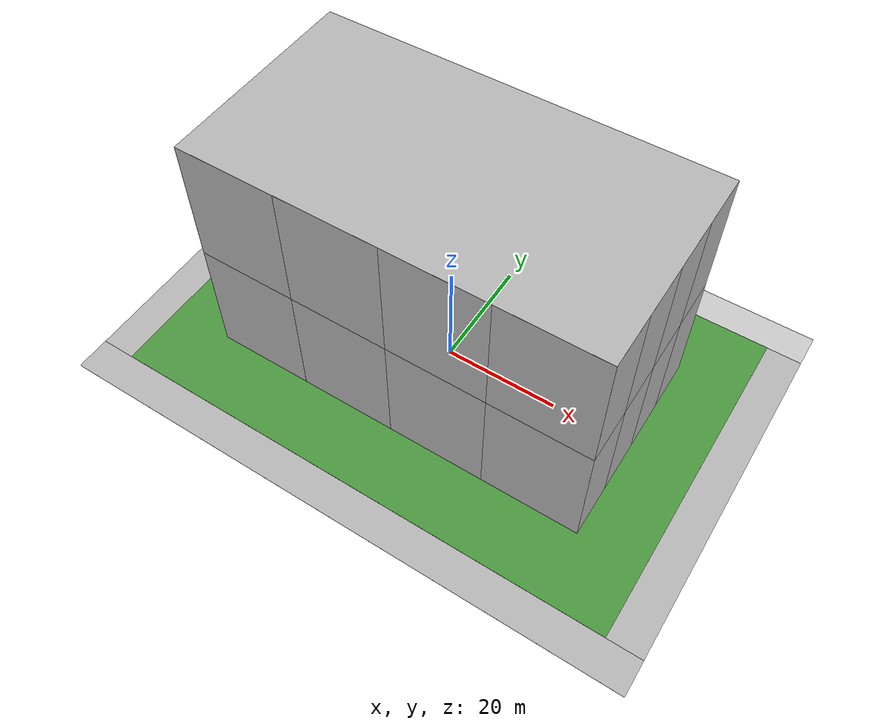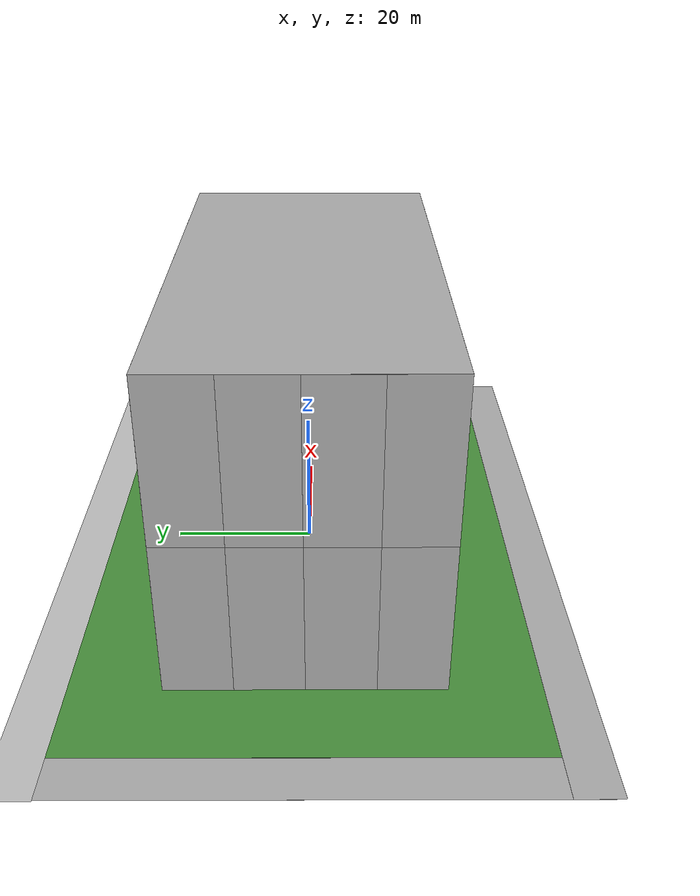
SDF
<sdf version="1.4">
  <world name="default">
    <light name="sun" type="directional">
      <pose>0 0 10 0 -0 0</pose>
      <diffuse>0.8 0.8 0.8 1</diffuse>
      <specular>0.2 0.2 0.2 1</specular>
      <attenuation>
        <range>1000</range>
        <constant>0.9</constant>
        <linear>0.01</linear>
        <quadratic>0.001</quadratic>
      </attenuation>
      <direction>-0.5 0.1 -0.9</direction>
    </light>
    <physics type="ode">
      <max_step_size>0.001</max_step_size>
      <real_time_factor>1</real_time_factor>
      <real_time_update_rate>1000</real_time_update_rate>
      <gravity>0 0 -9.8</gravity>
    </physics>
    <scene>
      <ambient>0.4 0.4 0.4 1</ambient>
      <background>0.7 0.7 0.7 1</background>
      <shadows>1</shadows>
    </scene>
    <gui fullscreen="0">
      <camera name="user_camera">
        <pose>60 -40 50 -2.88294e-17 0.273797 1.8042</pose>
        <view_controller>orbit</view_controller>
      </camera>
    </gui>
  <model name="robocup_3Dsim_field_0">
    <pose frame="">0 0 0.0 0 -0 0</pose>
    <static>1</static>
    <link name="RoboCup 3D Simulation Field::field">
      <pose frame="">0 0 0.01 0 -0 0</pose>
      <collision name="collision">
        <geometry>
          <plane>
            <normal>0 0 1</normal>
            <size>90 60</size>
          </plane>
        </geometry>
        <surface>
          <friction>
            <ode>
              <mu>100</mu>
              <mu2>50</mu2>
            </ode>
          </friction>
          <contact>
            <ode />
          </contact>
          <bounce />
        </surface>
        <max_contacts>10</max_contacts>
      </collision>
      <visual name="base1">
        <pose frame="">0 33 0.001 0 -0 0</pose>
        <geometry>
          <plane>
            <normal>0 0 1</normal>
            <size>102 6</size>
          </plane>
        </geometry>
        <material>
          <script>
            <uri>model://robocup_3Dsim_field/materials/scripts/</uri>
            <uri>model://robocup_3Dsim_field/materials/textures/</uri>
            <name>RoboCup/FieldBorder</name>
          </script>
        </material>
      </visual>
      <visual name="base2">
        <pose frame="">0 -33 0.001 0 -0 0</pose>
        <geometry>
          <plane>
            <normal>0 0 1</normal>
            <size>102 6</size>
          </plane>
        </geometry>
        <material>
          <script>
            <uri>model://robocup_3Dsim_field/materials/scripts/</uri>
            <uri>model://robocup_3Dsim_field/materials/textures/</uri>
            <name>RoboCup/FieldBorder</name>
          </script>
        </material>
      </visual>
      <visual name="base3">
        <pose frame="">48 0 0.001 0 -0 0</pose>
        <geometry>
          <plane>
            <normal>0 0 1</normal>
            <size>6 60</size>
          </plane>
        </geometry>
        <material>
          <script>
            <uri>model://robocup_3Dsim_field/materials/scripts/</uri>
            <uri>model://robocup_3Dsim_field/materials/textures/</uri>
            <name>RoboCup/FieldBorder</name>
          </script>
        </material>
      </visual>
      <visual name="base4">
        <pose frame="">-48 0 0.001 0 -0 0</pose>
        <geometry>
          <plane>
            <normal>0 0 1</normal>
            <size>6 60</size>
          </plane>
        </geometry>
        <material>
          <script>
            <uri>model://robocup_3Dsim_field/materials/scripts/</uri>
            <uri>model://robocup_3Dsim_field/materials/textures/</uri>
            <name>RoboCup/FieldBorder</name>
          </script>
        </material>
      </visual>
      <visual name="carpet">
        <geometry>
          <plane>
            <normal>0 0 1</normal>
            <size>90 60</size>
          </plane>
        </geometry>
        <material>
          <script>
            <uri>model://robocup_3Dsim_field/materials/scripts/</uri>
            <uri>model://robocup_3Dsim_field/materials/textures/</uri>
            <name>RoboCup/Grass</name>
          </script>
        </material>
      </visual>
      <self_collide>0</self_collide>
      <kinematic>0</kinematic>
      <gravity>1</gravity>
    </link>
  </model>

  <light name="south_wall_light" type="directional">
    <pose>0 -40 10 0 -0 0</pose>
    <diffuse>0.8 0.8 0.8 1</diffuse>
    <specular>0.2 0.2 0.2 1</specular>
    <attenuation>
      <range>1000</range>
      <constant>0.9</constant>
      <linear>0.01</linear>
      <quadratic>0.001</quadratic>
    </attenuation>
    <direction>0 1 0</direction>
  </light>

  <model name="south_wall_0">
    <static>1</static>
    <link name="link">
      <pose frame="">0 0 0 0 -0 0</pose>
      <collision name="collision">
        <geometry>
          <box>
            <size>17 0.01 22</size>
          </box>
        </geometry>
        <max_contacts>3</max_contacts>
      </collision>
      <visual name="visual">
        <geometry>
          <box>
            <size>17 0.01 22</size>
          </box>
        </geometry>
        <material>
          <script>
            <uri>/workspace/src/parrot_ardrone/drone_construct/models/south_wall/materials/scripts</uri>
            <uri>/workspace/src/parrot_ardrone/drone_construct/models/south_wall/materials/textures</uri>
            <name>south_wall_mat/0</name>
          </script>
        </material>
      </visual>
    </link>
    <pose frame="">-25.5 -18 33 0 -0 0</pose>
  </model>

  <model name="south_wall_1">
    <static>1</static>
    <link name="link">
      <pose frame="">0 0 0 0 -0 0</pose>
      <collision name="collision">
        <geometry>
          <box>
            <size>17 0.01 22</size>
          </box>
        </geometry>
        <max_contacts>3</max_contacts>
      </collision>
      <visual name="visual">
        <geometry>
          <box>
            <size>17 0.01 22</size>
          </box>
        </geometry>
        <material>
          <script>
            <uri>/workspace/src/parrot_ardrone/drone_construct/models/south_wall/materials/scripts</uri>
            <uri>/workspace/src/parrot_ardrone/drone_construct/models/south_wall/materials/textures</uri>
            <name>south_wall_mat/1</name>
          </script>
        </material>
      </visual>
    </link>
    <pose frame="">-8.5 -18 33 0 -0 0</pose>
  </model>

  <model name="south_wall_2">
    <static>1</static>
    <link name="link">
      <pose frame="">0 0 0 0 -0 0</pose>
      <collision name="collision">
        <geometry>
          <box>
            <size>17 0.01 22</size>
          </box>
        </geometry>
        <max_contacts>3</max_contacts>
      </collision>
      <visual name="visual">
        <geometry>
          <box>
            <size>17 0.01 22</size>
          </box>
        </geometry>
        <material>
          <script>
            <uri>/workspace/src/parrot_ardrone/drone_construct/models/south_wall/materials/scripts</uri>
            <uri>/workspace/src/parrot_ardrone/drone_construct/models/south_wall/materials/textures</uri>
            <name>south_wall_mat/2</name>
          </script>
        </material>
      </visual>
    </link>
    <pose frame="">8.5 -18 33 0 -0 0</pose>
  </model>

  <model name="south_wall_3">
    <static>1</static>
    <link name="link">
      <pose frame="">0 0 00 0 -0 0</pose>
      <collision name="collision">
        <geometry>
          <box>
            <size>17 0.01 22</size>
          </box>
        </geometry>
        <max_contacts>3</max_contacts>
      </collision>
      <visual name="visual">
        <geometry>
          <box>
            <size>17 0.01 22</size>
          </box>
        </geometry>
        <material>
          <script>
            <uri>/workspace/src/parrot_ardrone/drone_construct/models/south_wall/materials/scripts</uri>
            <uri>/workspace/src/parrot_ardrone/drone_construct/models/south_wall/materials/textures</uri>
            <name>south_wall_mat/3</name>
          </script>
        </material>
      </visual>
    </link>
    <pose frame="">25.5 -18 33 0 -0 0</pose>
  </model>

  <model name="south_wall_4">
    <static>1</static>
    <link name="link">
      <pose frame="">0 0 0 0 -0 0</pose>
      <collision name="collision">
        <geometry>
          <box>
            <size>17 0.01 22</size>
          </box>
        </geometry>
        <max_contacts>3</max_contacts>
      </collision>
      <visual name="visual">
        <geometry>
          <box>
            <size>17 0.01 22</size>
          </box>
        </geometry>
        <material>
          <script>
            <uri>/workspace/src/parrot_ardrone/drone_construct/models/south_wall/materials/scripts</uri>
            <uri>/workspace/src/parrot_ardrone/drone_construct/models/south_wall/materials/textures</uri>
            <name>south_wall_mat/4</name>
          </script>
        </material>
      </visual>
    </link>
    <pose frame="">-25.5 -18 11 0 -0 0</pose>
  </model>

  <model name="south_wall_5">
    <static>1</static>
    <link name="link">
      <pose frame="">0 0 0 0 -0 0</pose>
      <collision name="collision">
        <geometry>
          <box>
            <size>17 0.01 22</size>
          </box>
        </geometry>
        <max_contacts>3</max_contacts>
      </collision>
      <visual name="visual">
        <geometry>
          <box>
            <size>17 0.01 22</size>
          </box>
        </geometry>
        <material>
          <script>
            <uri>/workspace/src/parrot_ardrone/drone_construct/models/south_wall/materials/scripts</uri>
            <uri>/workspace/src/parrot_ardrone/drone_construct/models/south_wall/materials/textures</uri>
            <name>south_wall_mat/5</name>
          </script>
        </material>
      </visual>
    </link>
    <pose frame="">-8.5 -18 11 0 -0 0</pose>
  </model>

  <model name="south_wall_6">
    <static>1</static>
    <link name="link">
      <pose frame="">0 0 0 0 -0 0</pose>
      <collision name="collision">
        <geometry>
          <box>
            <size>17 0.01 22</size>
          </box>
        </geometry>
        <max_contacts>3</max_contacts>
      </collision>
      <visual name="visual">
        <geometry>
          <box>
            <size>17 0.01 22</size>
          </box>
        </geometry>
        <material>
          <script>
            <uri>/workspace/src/parrot_ardrone/drone_construct/models/south_wall/materials/scripts</uri>
            <uri>/workspace/src/parrot_ardrone/drone_construct/models/south_wall/materials/textures</uri>
            <name>south_wall_mat/6</name>
          </script>
        </material>
      </visual>
    </link>
    <pose frame="">8.5 -18 11 0 -0 0</pose>
  </model>

  <model name="south_wall_7">
    <static>1</static>
    <link name="link">
      <pose frame="">0 0 0 0 -0 0</pose>
      <collision name="collision">
        <geometry>
          <box>
            <size>17 0.01 22</size>
          </box>
        </geometry>
        <max_contacts>3</max_contacts>
      </collision>
      <visual name="visual">
        <geometry>
          <box>
            <size>17 0.01 22</size>
          </box>
        </geometry>
        <material>
          <script>
            <uri>/workspace/src/parrot_ardrone/drone_construct/models/south_wall/materials/scripts</uri>
            <uri>/workspace/src/parrot_ardrone/drone_construct/models/south_wall/materials/textures</uri>
            <name>south_wall_mat/7</name>
          </script>
        </material>
      </visual>
    </link>
    <pose frame="">25.5 -18 11 0 -0 0</pose>
  </model>

  <model name="north_wall_0">
    <static>1</static>
    <link name="link">
      <pose frame="">0 0 0 0 -0 0</pose>
      <collision name="collision">
        <geometry>
          <box>
            <size>17 0.01 22</size>
          </box>
        </geometry>
        <max_contacts>3</max_contacts>
      </collision>
      <visual name="visual">
        <geometry>
          <box>
            <size>17 0.01 22</size>
          </box>
        </geometry>
        <material>
          <script>
            <uri>/workspace/src/parrot_ardrone/drone_construct/models/south_wall/materials/scripts</uri>
            <uri>/workspace/src/parrot_ardrone/drone_construct/models/south_wall/materials/textures</uri>
            <name>south_wall_mat/0</name>
          </script>
        </material>
      </visual>
    </link>
    <pose frame="">-25.5 18 33 0 -0 0</pose>
  </model>

  <model name="north_wall_1">
    <static>1</static>
    <link name="link">
      <pose frame="">0 0 0 0 -0 0</pose>
      <collision name="collision">
        <geometry>
          <box>
            <size>17 0.01 22</size>
          </box>
        </geometry>
        <max_contacts>3</max_contacts>
      </collision>
      <visual name="visual">
        <geometry>
          <box>
            <size>17 0.01 22</size>
          </box>
        </geometry>
        <material>
          <script>
            <uri>/workspace/src/parrot_ardrone/drone_construct/models/south_wall/materials/scripts</uri>
            <uri>/workspace/src/parrot_ardrone/drone_construct/models/south_wall/materials/textures</uri>
            <name>south_wall_mat/1</name>
          </script>
        </material>
      </visual>
    </link>
    <pose frame="">-8.5 18 33 0 -0 0</pose>
  </model>

  <model name="north_wall_2">
    <static>1</static>
    <link name="link">
      <pose frame="">0 0 0 0 -0 0</pose>
      <collision name="collision">
        <geometry>
          <box>
            <size>17 0.01 22</size>
          </box>
        </geometry>
        <max_contacts>3</max_contacts>
      </collision>
      <visual name="visual">
        <geometry>
          <box>
            <size>17 0.01 22</size>
          </box>
        </geometry>
        <material>
          <script>
            <uri>/workspace/src/parrot_ardrone/drone_construct/models/south_wall/materials/scripts</uri>
            <uri>/workspace/src/parrot_ardrone/drone_construct/models/south_wall/materials/textures</uri>
            <name>south_wall_mat/2</name>
          </script>
        </material>
      </visual>
    </link>
    <pose frame="">8.5 18 33 0 -0 0</pose>
  </model>

  <model name="north_wall_3">
    <static>1</static>
    <link name="link">
      <pose frame="">0 0 00 0 -0 0</pose>
      <collision name="collision">
        <geometry>
          <box>
            <size>17 0.01 22</size>
          </box>
        </geometry>
        <max_contacts>3</max_contacts>
      </collision>
      <visual name="visual">
        <geometry>
          <box>
            <size>17 0.01 22</size>
          </box>
        </geometry>
        <material>
          <script>
            <uri>/workspace/src/parrot_ardrone/drone_construct/models/south_wall/materials/scripts</uri>
            <uri>/workspace/src/parrot_ardrone/drone_construct/models/south_wall/materials/textures</uri>
            <name>south_wall_mat/3</name>
          </script>
        </material>
      </visual>
    </link>
    <pose frame="">25.5 18 33 0 -0 0</pose>
  </model>

  <model name="north_wall_4">
    <static>1</static>
    <link name="link">
      <pose frame="">0 0 0 0 -0 0</pose>
      <collision name="collision">
        <geometry>
          <box>
            <size>17 0.01 22</size>
          </box>
        </geometry>
        <max_contacts>3</max_contacts>
      </collision>
      <visual name="visual">
        <geometry>
          <box>
            <size>17 0.01 22</size>
          </box>
        </geometry>
        <material>
          <script>
            <uri>/workspace/src/parrot_ardrone/drone_construct/models/south_wall/materials/scripts</uri>
            <uri>/workspace/src/parrot_ardrone/drone_construct/models/south_wall/materials/textures</uri>
            <name>south_wall_mat/4</name>
          </script>
        </material>
      </visual>
    </link>
    <pose frame="">-25.5 18 11 0 -0 0</pose>
  </model>

  <model name="north_wall_5">
    <static>1</static>
    <link name="link">
      <pose frame="">0 0 0 0 -0 0</pose>
      <collision name="collision">
        <geometry>
          <box>
            <size>17 0.01 22</size>
          </box>
        </geometry>
        <max_contacts>3</max_contacts>
      </collision>
      <visual name="visual">
        <geometry>
          <box>
            <size>17 0.01 22</size>
          </box>
        </geometry>
        <material>
          <script>
            <uri>/workspace/src/parrot_ardrone/drone_construct/models/south_wall/materials/scripts</uri>
            <uri>/workspace/src/parrot_ardrone/drone_construct/models/south_wall/materials/textures</uri>
            <name>south_wall_mat/5</name>
          </script>
        </material>
      </visual>
    </link>
    <pose frame="">-8.5 18 11 0 -0 0</pose>
  </model>

  <model name="north_wall_6">
    <static>1</static>
    <link name="link">
      <pose frame="">0 0 0 0 -0 0</pose>
      <collision name="collision">
        <geometry>
          <box>
            <size>17 0.01 22</size>
          </box>
        </geometry>
        <max_contacts>3</max_contacts>
      </collision>
      <visual name="visual">
        <geometry>
          <box>
            <size>17 0.01 22</size>
          </box>
        </geometry>
        <material>
          <script>
            <uri>/workspace/src/parrot_ardrone/drone_construct/models/south_wall/materials/scripts</uri>
            <uri>/workspace/src/parrot_ardrone/drone_construct/models/south_wall/materials/textures</uri>
            <name>south_wall_mat/6</name>
          </script>
        </material>
      </visual>
    </link>
    <pose frame="">8.5 18 11 0 -0 0</pose>
  </model>

  <model name="north_wall_7">
    <static>1</static>
    <link name="link">
      <pose frame="">0 0 0 0 -0 0</pose>
      <collision name="collision">
        <geometry>
          <box>
            <size>17 0.01 22</size>
          </box>
        </geometry>
        <max_contacts>3</max_contacts>
      </collision>
      <visual name="visual">
        <geometry>
          <box>
            <size>17 0.01 22</size>
          </box>
        </geometry>
        <material>
          <script>
            <uri>/workspace/src/parrot_ardrone/drone_construct/models/south_wall/materials/scripts</uri>
            <uri>/workspace/src/parrot_ardrone/drone_construct/models/south_wall/materials/textures</uri>
            <name>south_wall_mat/7</name>
          </script>
        </material>
      </visual>
    </link>
    <pose frame="">25.5 18 11 0 -0 0</pose>
  </model>

  <light name="east_wall_light" type="directional">
    <pose>50 0 10 0 -0 0</pose>
    <diffuse>0.8 0.8 0.8 1</diffuse>
    <specular>0.2 0.2 0.2 1</specular>
    <attenuation>
      <range>1000</range>
      <constant>0.9</constant>
      <linear>0.01</linear>
      <quadratic>0.001</quadratic>
    </attenuation>
    <direction>-1 0 0</direction>
  </light>
  <light name="west_wall_light" type="directional">
    <pose>-50 0 10 0 -0 0</pose>
    <diffuse>0.8 0.8 0.8 1</diffuse>
    <specular>0.2 0.2 0.2 1</specular>
    <attenuation>
      <range>1000</range>
      <constant>0.9</constant>
      <linear>0.01</linear>
      <quadratic>0.001</quadratic>
    </attenuation>
    <direction>1 0 0</direction>
  </light>

  <model name="east_wall_0">
    <static>1</static>
    <link name="link">
      <pose frame="">0 0 0 0 -0 0</pose>
      <collision name="collision">
        <geometry>
          <box>
            <size>9 0.01 22</size>
          </box>
        </geometry>
        <max_contacts>3</max_contacts>
      </collision>
      <visual name="visual">
        <geometry>
          <box>
            <size>9 0.01 22</size>
          </box>
        </geometry>
        <material>
          <script>
            <uri>/workspace/src/parrot_ardrone/drone_construct/models/east_wall/materials/scripts</uri>
            <uri>/workspace/src/parrot_ardrone/drone_construct/models/east_wall/materials/textures</uri>
            <name>east_wall_mat/0</name>
          </script>
        </material>
      </visual>
    </link>
    <pose frame="">34 -13.5 33 0 -0 1.570796327 </pose>
  </model>

  <model name="east_wall_1">
    <static>1</static>
    <link name="link">
      <pose frame="">0 0 0 0 -0 0</pose>
      <collision name="collision">
        <geometry>
          <box>
            <size>9 0.01 22</size>
          </box>
        </geometry>
        <max_contacts>3</max_contacts>
      </collision>
      <visual name="visual">
        <geometry>
          <box>
            <size>9 0.01 22</size>
          </box>
        </geometry>
        <material>
          <script>
            <uri>/workspace/src/parrot_ardrone/drone_construct/models/east_wall/materials/scripts</uri>
            <uri>/workspace/src/parrot_ardrone/drone_construct/models/east_wall/materials/textures</uri>
            <name>east_wall_mat/1</name>
          </script>
        </material>
      </visual>
    </link>
    <pose frame="">34 -4.5 33 0 -0 1.570796327 </pose>
  </model>

  <model name="east_wall_2">
    <static>1</static>
    <link name="link">
      <pose frame="">0 0 0 0 -0 0</pose>
      <collision name="collision">
        <geometry>
          <box>
            <size>9 0.01 22</size>
          </box>
        </geometry>
        <max_contacts>3</max_contacts>
      </collision>
      <visual name="visual">
        <geometry>
          <box>
            <size>9 0.01 22</size>
          </box>
        </geometry>
        <material>
          <script>
            <uri>/workspace/src/parrot_ardrone/drone_construct/models/east_wall/materials/scripts</uri>
            <uri>/workspace/src/parrot_ardrone/drone_construct/models/east_wall/materials/textures</uri>
            <name>east_wall_mat/2</name>
          </script>
        </material>
      </visual>
    </link>
    <pose frame="">34 4.5 33 0 -0 1.570796327 </pose>
  </model>

  <model name="east_wall_3">
    <static>1</static>
    <link name="link">
      <pose frame="">0 0 0 0 -0 0</pose>
      <collision name="collision">
        <geometry>
          <box>
            <size>9 0.01 22</size>
          </box>
        </geometry>
        <max_contacts>3</max_contacts>
      </collision>
      <visual name="visual">
        <geometry>
          <box>
            <size>9 0.01 22</size>
          </box>
        </geometry>
        <material>
          <script>
            <uri>/workspace/src/parrot_ardrone/drone_construct/models/east_wall/materials/scripts</uri>
            <uri>/workspace/src/parrot_ardrone/drone_construct/models/east_wall/materials/textures</uri>
            <name>east_wall_mat/3</name>
          </script>
        </material>
      </visual>
    </link>
    <pose frame="">34 13.5 33 0 -0 1.570796327 </pose>
  </model>

  <model name="east_wall_4">
    <static>1</static>
    <link name="link">
      <pose frame="">0 0 0 0 -0 0</pose>
      <collision name="collision">
        <geometry>
          <box>
            <size>9 0.01 22</size>
          </box>
        </geometry>
        <max_contacts>3</max_contacts>
      </collision>
      <visual name="visual">
        <geometry>
          <box>
            <size>9 0.01 22</size>
          </box>
        </geometry>
        <material>
          <script>
            <uri>/workspace/src/parrot_ardrone/drone_construct/models/east_wall/materials/scripts</uri>
            <uri>/workspace/src/parrot_ardrone/drone_construct/models/east_wall/materials/textures</uri>
            <name>east_wall_mat/4</name>
          </script>
        </material>
      </visual>
    </link>
    <pose frame="">34 -13.5 11 0 -0 1.570796327 </pose>
  </model>

  <model name="east_wall_5">
    <static>1</static>
    <link name="link">
      <pose frame="">0 0 0 0 -0 0</pose>
      <collision name="collision">
        <geometry>
          <box>
            <size>9 0.01 22</size>
          </box>
        </geometry>
        <max_contacts>3</max_contacts>
      </collision>
      <visual name="visual">
        <geometry>
          <box>
            <size>9 0.01 22</size>
          </box>
        </geometry>
        <material>
          <script>
            <uri>/workspace/src/parrot_ardrone/drone_construct/models/east_wall/materials/scripts</uri>
            <uri>/workspace/src/parrot_ardrone/drone_construct/models/east_wall/materials/textures</uri>
            <name>east_wall_mat/5</name>
          </script>
        </material>
      </visual>
    </link>
    <pose frame="">34 -4.5 11 0 -0 1.570796327 </pose>
  </model>

  <model name="east_wall_6">
    <static>1</static>
    <link name="link">
      <pose frame="">0 0 0 0 -0 0</pose>
      <collision name="collision">
        <geometry>
          <box>
            <size>9 0.01 22</size>
          </box>
        </geometry>
        <max_contacts>3</max_contacts>
      </collision>
      <visual name="visual">
        <geometry>
          <box>
            <size>9 0.01 22</size>
          </box>
        </geometry>
        <material>
          <script>
            <uri>/workspace/src/parrot_ardrone/drone_construct/models/east_wall/materials/scripts</uri>
            <uri>/workspace/src/parrot_ardrone/drone_construct/models/east_wall/materials/textures</uri>
            <name>east_wall_mat/6</name>
          </script>
        </material>
      </visual>
    </link>
    <pose frame="">34 4.5 11 0 -0 1.570796327 </pose>
  </model>

  <model name="east_wall_7">
    <static>1</static>
    <link name="link">
      <pose frame="">0 0 0 0 -0 0</pose>
      <collision name="collision">
        <geometry>
          <box>
            <size>9 0.01 22</size>
          </box>
        </geometry>
        <max_contacts>3</max_contacts>
      </collision>
      <visual name="visual">
        <geometry>
          <box>
            <size>9 0.01 22</size>
          </box>
        </geometry>
        <material>
          <script>
            <uri>/workspace/src/parrot_ardrone/drone_construct/models/east_wall/materials/scripts</uri>
            <uri>/workspace/src/parrot_ardrone/drone_construct/models/east_wall/materials/textures</uri>
            <name>east_wall_mat/7</name>
          </script>
        </material>
      </visual>
    </link>
    <pose frame="">34 13.5 11 0 -0 1.570796327 </pose>
  </model>

  <model name="west_wall_0">
    <static>1</static>
    <link name="link">
      <pose frame="">0 0 0 0 -0 0</pose>
      <collision name="collision">
        <geometry>
          <box>
            <size>9 0.01 22</size>
          </box>
        </geometry>
        <max_contacts>3</max_contacts>
      </collision>
      <visual name="visual">
        <geometry>
          <box>
            <size>9 0.01 22</size>
          </box>
        </geometry>
        <material>
          <script>
            <uri>/workspace/src/parrot_ardrone/drone_construct/models/east_wall/materials/scripts</uri>
            <uri>/workspace/src/parrot_ardrone/drone_construct/models/east_wall/materials/textures</uri>
            <name>east_wall_mat/0</name>
          </script>
        </material>
      </visual>
    </link>
    <pose frame="">-34 -13.5 33 0 -0 1.570796327 </pose>
  </model>

  <model name="west_wall_1">
    <static>1</static>
    <link name="link">
      <pose frame="">0 0 0 0 -0 0</pose>
      <collision name="collision">
        <geometry>
          <box>
            <size>9 0.01 22</size>
          </box>
        </geometry>
        <max_contacts>3</max_contacts>
      </collision>
      <visual name="visual">
        <geometry>
          <box>
            <size>9 0.01 22</size>
          </box>
        </geometry>
        <material>
          <script>
            <uri>/workspace/src/parrot_ardrone/drone_construct/models/east_wall/materials/scripts</uri>
            <uri>/workspace/src/parrot_ardrone/drone_construct/models/east_wall/materials/textures</uri>
            <name>east_wall_mat/1</name>
          </script>
        </material>
      </visual>
    </link>
    <pose frame="">-34 -4.5 33 0 -0 1.570796327 </pose>
  </model>

  <model name="west_wall_2">
    <static>1</static>
    <link name="link">
      <pose frame="">0 0 0 0 -0 0</pose>
      <collision name="collision">
        <geometry>
          <box>
            <size>9 0.01 22</size>
          </box>
        </geometry>
        <max_contacts>3</max_contacts>
      </collision>
      <visual name="visual">
        <geometry>
          <box>
            <size>9 0.01 22</size>
          </box>
        </geometry>
        <material>
          <script>
            <uri>/workspace/src/parrot_ardrone/drone_construct/models/east_wall/materials/scripts</uri>
            <uri>/workspace/src/parrot_ardrone/drone_construct/models/east_wall/materials/textures</uri>
            <name>east_wall_mat/2</name>
          </script>
        </material>
      </visual>
    </link>
    <pose frame="">-34 4.5 33 0 -0 1.570796327 </pose>
  </model>

  <model name="west_wall_3">
    <static>1</static>
    <link name="link">
      <pose frame="">0 0 0 0 -0 0</pose>
      <collision name="collision">
        <geometry>
          <box>
            <size>9 0.01 22</size>
          </box>
        </geometry>
        <max_contacts>3</max_contacts>
      </collision>
      <visual name="visual">
        <geometry>
          <box>
            <size>9 0.01 22</size>
          </box>
        </geometry>
        <material>
          <script>
            <uri>/workspace/src/parrot_ardrone/drone_construct/models/east_wall/materials/scripts</uri>
            <uri>/workspace/src/parrot_ardrone/drone_construct/models/east_wall/materials/textures</uri>
            <name>east_wall_mat/3</name>
          </script>
        </material>
      </visual>
    </link>
    <pose frame="">-34 13.5 33 0 -0 1.570796327 </pose>
  </model>

  <model name="west_wall_4">
    <static>1</static>
    <link name="link">
      <pose frame="">0 0 0 0 -0 0</pose>
      <collision name="collision">
        <geometry>
          <box>
            <size>9 0.01 22</size>
          </box>
        </geometry>
        <max_contacts>3</max_contacts>
      </collision>
      <visual name="visual">
        <geometry>
          <box>
            <size>9 0.01 22</size>
          </box>
        </geometry>
        <material>
          <script>
            <uri>/workspace/src/parrot_ardrone/drone_construct/models/east_wall/materials/scripts</uri>
            <uri>/workspace/src/parrot_ardrone/drone_construct/models/east_wall/materials/textures</uri>
            <name>east_wall_mat/4</name>
          </script>
        </material>
      </visual>
    </link>
    <pose frame="">-34 -13.5 11 0 -0 1.570796327 </pose>
  </model>

  <model name="west_wall_5">
    <static>1</static>
    <link name="link">
      <pose frame="">0 0 0 0 -0 0</pose>
      <collision name="collision">
        <geometry>
          <box>
            <size>9 0.01 22</size>
          </box>
        </geometry>
        <max_contacts>3</max_contacts>
      </collision>
      <visual name="visual">
        <geometry>
          <box>
            <size>9 0.01 22</size>
          </box>
        </geometry>
        <material>
          <script>
            <uri>/workspace/src/parrot_ardrone/drone_construct/models/east_wall/materials/scripts</uri>
            <uri>/workspace/src/parrot_ardrone/drone_construct/models/east_wall/materials/textures</uri>
            <name>east_wall_mat/5</name>
          </script>
        </material>
      </visual>
    </link>
    <pose frame="">-34 -4.5 11 0 -0 1.570796327 </pose>
  </model>

  <model name="west_wall_6">
    <static>1</static>
    <link name="link">
      <pose frame="">0 0 0 0 -0 0</pose>
      <collision name="collision">
        <geometry>
          <box>
            <size>9 0.01 22</size>
          </box>
        </geometry>
        <max_contacts>3</max_contacts>
      </collision>
      <visual name="visual">
        <geometry>
          <box>
            <size>9 0.01 22</size>
          </box>
        </geometry>
        <material>
          <script>
            <uri>/workspace/src/parrot_ardrone/drone_construct/models/east_wall/materials/scripts</uri>
            <uri>/workspace/src/parrot_ardrone/drone_construct/models/east_wall/materials/textures</uri>
            <name>east_wall_mat/6</name>
          </script>
        </material>
      </visual>
    </link>
    <pose frame="">-34 4.5 11 0 -0 1.570796327 </pose>
  </model>

  <model name="west_wall_7">
    <static>1</static>
    <link name="link">
      <pose frame="">0 0 0 0 -0 0</pose>
      <collision name="collision">
        <geometry>
          <box>
            <size>9 0.01 22</size>
          </box>
        </geometry>
        <max_contacts>3</max_contacts>
      </collision>
      <visual name="visual">
        <geometry>
          <box>
            <size>9 0.01 22</size>
          </box>
        </geometry>
        <material>
          <script>
            <uri>/workspace/src/parrot_ardrone/drone_construct/models/east_wall/materials/scripts</uri>
            <uri>/workspace/src/parrot_ardrone/drone_construct/models/east_wall/materials/textures</uri>
            <name>east_wall_mat/7</name>
          </script>
        </material>
      </visual>
    </link>
    <pose frame="">-34 13.5 11 0 -0 1.570796327 </pose>
  </model>

  <model name="ceiling">
    <static>1</static>
    <link name="link">
      <pose frame="">0 0 0 0 -0 0</pose>
      <collision name="collision">
        <geometry>
          <box>
            <size>68 0.01 36</size>
          </box>
        </geometry>
        <max_contacts>3</max_contacts>
      </collision>
      <visual name="visual">
        <geometry>
          <box>
            <size>68 0.01 36</size>
          </box>
        </geometry>
        <material>
          <script>
            <uri>/workspace/src/parrot_ardrone/drone_construct/models/ceiling/materials/scripts</uri>
            <uri>/workspace/src/parrot_ardrone/drone_construct/models/ceiling/materials/textures</uri>
            <name>ceiling/mini_with_skysnap</name>
          </script>
        </material>
      </visual>
    </link>
    <pose frame="">0 0 44 1.570796327 0 0 </pose>
  </model>

  </world>
</sdf>
